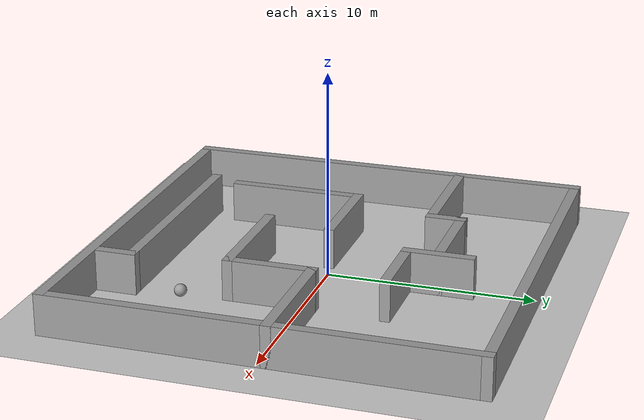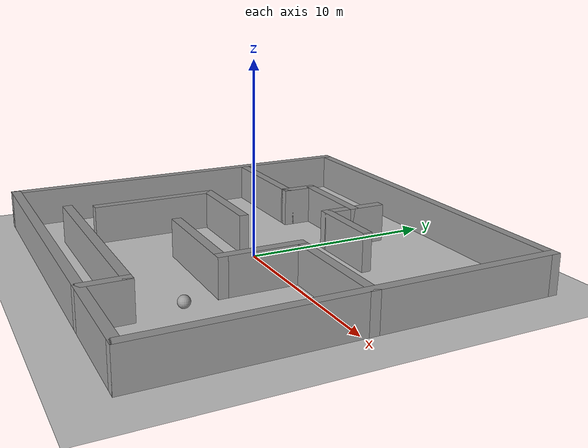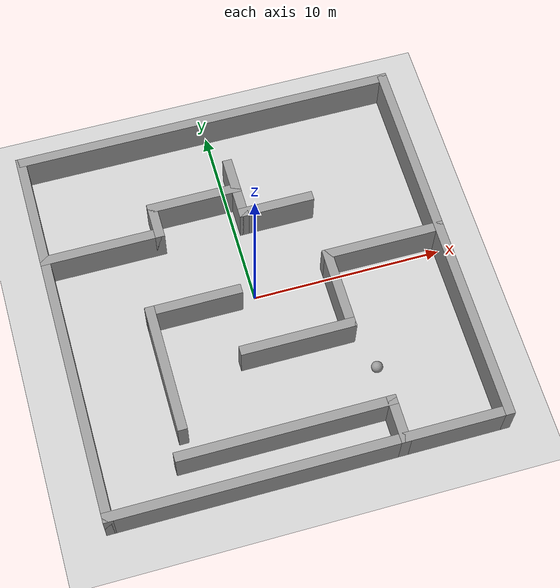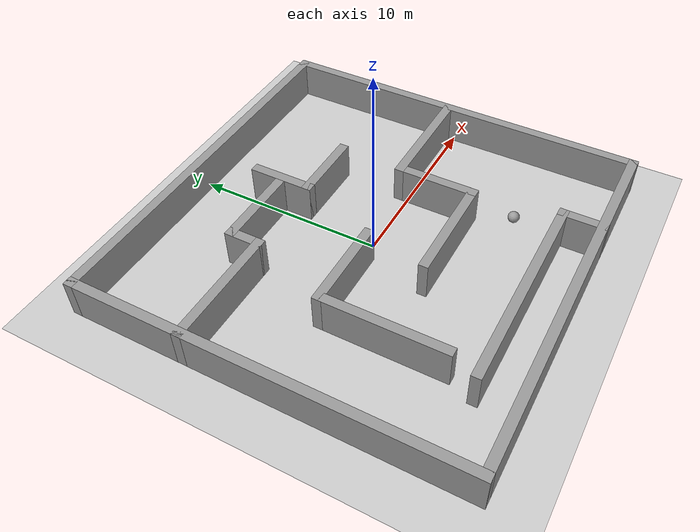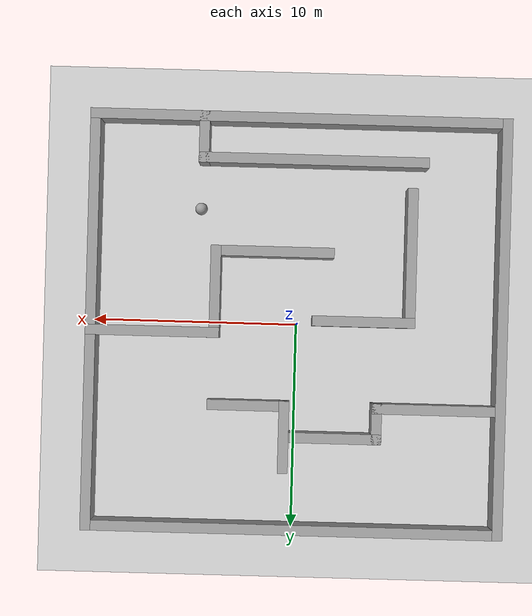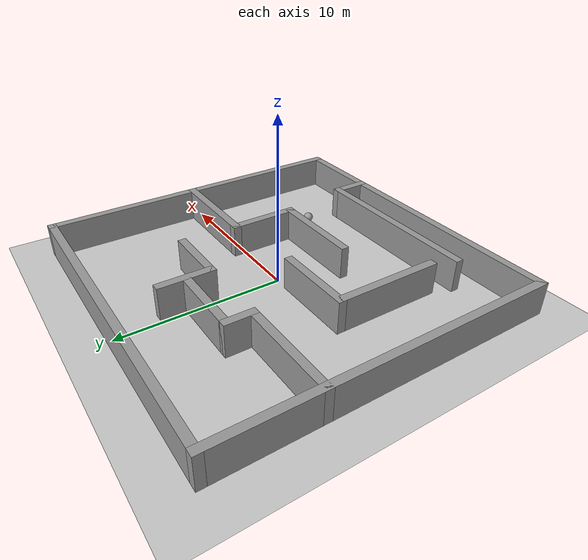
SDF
<sdf version="1.6">
 <world name="default">
  <light name="sun" type="directional">
   <pose>0 0 10 0 -0 0</pose>
   <diffuse>0.8 0.8 0.8 1</diffuse>
   <specular>0.1 0.1 0.1 1</specular>
   <attenuation>
    <range>1000</range>
    <constant>0.9</constant>
    <linear>0.01</linear>
    <quadratic>0.001</quadratic>
   </attenuation>
   <direction>-0.5 0.5 -1</direction>
  </light>
  <model name="ground_plane">
   <static>1</static>
   <link name="link">
    <collision name="collision">
     <geometry><plane><normal>0 0 1</normal><size>100 100</size></plane></geometry>
     <surface><friction><ode><mu>100</mu><mu2>50</mu2></ode></friction></surface>
    </collision>
    <visual name="visual">
     <cast_shadows>0</cast_shadows>
     <geometry><plane><normal>0 0 1</normal><size>100 100</size></plane></geometry>
     <material>
      <script><uri>file://media/materials/scripts/gazebo.material</uri><name>Gazebo/Grey</name></script>
     </material>
    </visual>
   </link>
  </model>
  <gravity>0 0 -9.8</gravity>
  <magnetic_field>6e-06 2.3e-05 -4.2e-05</magnetic_field>
  <atmosphere type="adiabatic"/>
  <physics name="default_physics" default="0" type="ode">
   <max_step_size>0.001</max_step_size>
   <real_time_factor>1</real_time_factor>
   <real_time_update_rate>1000</real_time_update_rate>
  </physics>
  <scene><ambient>0.4 0.4 0.4 1</ambient><background>0.7 0.7 0.7 1</background><shadows>1</shadows></scene>
  <spherical_coordinates>
   <surface_model>EARTH_WGS84</surface_model>
   <latitude_deg>0</latitude_deg>
   <longitude_deg>0</longitude_deg>
   <elevation>0</elevation>
   <heading_deg>0</heading_deg>
  </spherical_coordinates>
  <model name="test_maze1">
   <pose>0 -3.9e-05 0 0 -0 0</pose>
   <link name="Wall_0">
    <collision name="Wall_0_Collision">
     <geometry><box><size>20.5 0.5 2</size></box></geometry>
     <pose>0 0 1 0 -0 0</pose>
    </collision>
    <visual name="Wall_0_Visual">
     <pose>0 0 1 0 -0 0</pose>
     <geometry><box><size>20.5 0.5 2</size></box></geometry>
     <material>
      <script><uri>file://media/materials/scripts/gazebo.material</uri><name>Gazebo/Grey</name></script>
      <ambient>1 1 1 1</ambient>
     </material>
    </visual>
    <pose>-10 3.9e-05 0 0 0 -1.5708</pose>
   </link>
   <link name="Wall_1">
    <collision name="Wall_1_Collision">
     <geometry><box><size>20.5 0.5 2</size></box></geometry>
     <pose>0 0 1 0 -0 0</pose>
    </collision>
    <visual name="Wall_1_Visual">
     <pose>0 0 1 0 -0 0</pose>
     <geometry><box><size>20.5 0.5 2</size></box></geometry>
     <material>
      <script><uri>file://media/materials/scripts/gazebo.material</uri><name>Gazebo/Grey</name></script>
      <ambient>1 1 1 1</ambient>
     </material>
    </visual>
    <pose>0 -9.99996 0 0 -0 0</pose>
   </link>
   <link name="Wall_10">
    <collision name="Wall_10_Collision">
     <geometry><box><size>3.5 0.5 2</size></box></geometry>
     <pose>0 0 1 0 -0 0</pose>
    </collision>
    <visual name="Wall_10_Visual">
     <pose>0 0 1 0 -0 0</pose>
     <geometry><box><size>3.5 0.5 2</size></box></geometry>
     <material>
      <script><uri>file://media/materials/scripts/gazebo.material</uri><name>Gazebo/Grey</name></script>
      <ambient>1 1 1 1</ambient>
     </material>
    </visual>
    <pose>0.5 5.50004 0 0 0 -1.5708</pose>
   </link>
   <link name="Wall_11">
    <collision name="Wall_11_Collision">
     <geometry><box><size>4 0.5 2</size></box></geometry>
     <pose>0 0 1 0 -0 0</pose>
    </collision>
    <visual name="Wall_11_Visual">
     <pose>0 0 1 0 -0 0</pose>
     <geometry><box><size>4 0.5 2</size></box></geometry>
     <material>
      <script><uri>file://media/materials/scripts/gazebo.material</uri><name>Gazebo/Grey</name></script>
      <ambient>1 1 1 1</ambient>
     </material>
    </visual>
    <pose>2.25 4.00004 0 0 -0 0</pose>
   </link>
   <link name="Wall_13">
    <collision name="Wall_13_Collision">
     <geometry><box><size>5 0.5 2</size></box></geometry>
     <pose>0 0 1 0 -0 0</pose>
    </collision>
    <visual name="Wall_13_Visual">
     <pose>0 0 1 0 -0 0</pose>
     <geometry><box><size>5 0.5 2</size></box></geometry>
     <material>
      <script><uri>file://media/materials/scripts/gazebo.material</uri><name>Gazebo/Grey</name></script>
      <ambient>1 1 1 1</ambient>
     </material>
    </visual>
    <pose>-3.25 -0.199961 0 0 -0 3.14159</pose>
   </link>
   <link name="Wall_14">
    <collision name="Wall_14_Collision">
     <geometry><box><size>6.8 0.5 2</size></box></geometry>
     <pose>0 0 1 0 -0 0</pose>
    </collision>
    <visual name="Wall_14_Visual">
     <pose>0 0 1 0 -0 0</pose>
     <geometry><box><size>6.8 0.5 2</size></box></geometry>
     <material>
      <script><uri>file://media/materials/scripts/gazebo.material</uri><name>Gazebo/Grey</name></script>
      <ambient>1 1 1 1</ambient>
     </material>
    </visual>
    <pose>-5.5 -3.34996 0 0 0 -1.5708</pose>
   </link>
   <link name="Wall_16">
    <collision name="Wall_16_Collision">
     <geometry><box><size>11.2 0.5 2</size></box></geometry>
     <pose>0 0 1 0 -0 0</pose>
    </collision>
    <visual name="Wall_16_Visual">
     <pose>0 0 1 0 -0 0</pose>
     <geometry><box><size>11.2 0.5 2</size></box></geometry>
     <material>
      <script><uri>file://media/materials/scripts/gazebo.material</uri><name>Gazebo/Grey</name></script>
      <ambient>1 1 1 1</ambient>
     </material>
    </visual>
    <pose>-0.65 -7.99996 0 0 -0 0</pose>
   </link>
   <link name="Wall_17">
    <collision name="Wall_17_Collision">
     <geometry><box><size>2.50016 0.5 2</size></box></geometry>
     <pose>0 0 1 0 -0 0</pose>
    </collision>
    <visual name="Wall_17_Visual">
     <pose>0 0 1 0 -0 0</pose>
     <geometry><box><size>2.50016 0.5 2</size></box></geometry>
     <material>
      <script><uri>file://media/materials/scripts/gazebo.material</uri><name>Gazebo/Grey</name></script>
      <ambient>1 1 1 1</ambient>
     </material>
    </visual>
    <pose>4.7 -8.99996 0 0 0 -1.5708</pose>
   </link>
   <link name="Wall_19">
    <collision name="Wall_19_Collision">
     <geometry><box><size>6.5 0.5 2</size></box></geometry>
     <pose>0 0 1 0 -0 0</pose>
    </collision>
    <visual name="Wall_19_Visual">
     <pose>0 0 1 0 -0 0</pose>
     <geometry><box><size>6.5 0.5 2</size></box></geometry>
     <material>
      <script><uri>file://media/materials/scripts/gazebo.material</uri><name>Gazebo/Grey</name></script>
      <ambient>1 1 1 1</ambient>
     </material>
    </visual>
    <pose>7 0.500039 0 0 -0 0</pose>
   </link>
   <link name="Wall_2">
    <collision name="Wall_2_Collision">
     <geometry><box><size>20.5 0.5 2</size></box></geometry>
     <pose>0 0 1 0 -0 0</pose>
    </collision>
    <visual name="Wall_2_Visual">
     <pose>0 0 1 0 -0 0</pose>
     <geometry><box><size>20.5 0.5 2</size></box></geometry>
     <material>
      <script><uri>file://media/materials/scripts/gazebo.material</uri><name>Gazebo/Grey</name></script>
      <ambient>1 1 1 1</ambient>
     </material>
    </visual>
    <pose>10 3.9e-05 0 0 -0 1.5708</pose>
   </link>
   <link name="Wall_21">
    <collision name="Wall_21_Collision">
     <geometry><box><size>4.5 0.5 2</size></box></geometry>
     <pose>0 0 1 0 -0 0</pose>
    </collision>
    <visual name="Wall_21_Visual">
     <pose>0 0 1 0 -0 0</pose>
     <geometry><box><size>4.5 0.5 2</size></box></geometry>
     <material>
      <script><uri>file://media/materials/scripts/gazebo.material</uri><name>Gazebo/Grey</name></script>
      <ambient>1 1 1 1</ambient>
     </material>
    </visual>
    <pose>4 -1.49996 0 0 0 -1.5708</pose>
   </link>
   <link name="Wall_22">
    <collision name="Wall_22_Collision">
     <geometry><box><size>6 0.5 2</size></box></geometry>
     <pose>0 0 1 0 -0 0</pose>
    </collision>
    <visual name="Wall_22_Visual">
     <pose>0 0 1 0 -0 0</pose>
     <geometry><box><size>6 0.5 2</size></box></geometry>
     <material>
      <script><uri>file://media/materials/scripts/gazebo.material</uri><name>Gazebo/Grey</name></script>
      <ambient>1 1 1 1</ambient>
     </material>
    </visual>
    <pose>1.25 -3.49996 0 0 -0 3.14159</pose>
   </link>
   <link name="Wall_3">
    <collision name="Wall_3_Collision">
     <geometry><box><size>20.5 0.5 2</size></box></geometry>
     <pose>0 0 1 0 -0 0</pose>
    </collision>
    <visual name="Wall_3_Visual">
     <pose>0 0 1 0 -0 0</pose>
     <geometry><box><size>20.5 0.5 2</size></box></geometry>
     <material>
      <script><uri>file://media/materials/scripts/gazebo.material</uri><name>Gazebo/Grey</name></script>
      <ambient>1 1 1 1</ambient>
     </material>
    </visual>
    <pose>0 10 0 0 -0 3.14159</pose>
   </link>
   <link name="Wall_5">
    <collision name="Wall_5_Collision">
     <geometry><box><size>6.5 0.5 2</size></box></geometry>
     <pose>0 0 1 0 -0 0</pose>
    </collision>
    <visual name="Wall_5_Visual">
     <pose>0 0 1 0 -0 0</pose>
     <geometry><box><size>6.5 0.5 2</size></box></geometry>
     <material>
      <script><uri>file://media/materials/scripts/gazebo.material</uri><name>Gazebo/Grey</name></script>
      <ambient>1 1 1 1</ambient>
     </material>
    </visual>
    <pose>-7 4.00004 0 0 -0 0</pose>
   </link>
   <link name="Wall_6">
    <collision name="Wall_6_Collision">
     <geometry><box><size>2 0.5 2</size></box></geometry>
     <pose>0 0 1 0 -0 0</pose>
    </collision>
    <visual name="Wall_6_Visual">
     <pose>0 0 1 0 -0 0</pose>
     <geometry><box><size>2 0.5 2</size></box></geometry>
     <material>
      <script><uri>file://media/materials/scripts/gazebo.material</uri><name>Gazebo/Grey</name></script>
      <ambient>1 1 1 1</ambient>
     </material>
    </visual>
    <pose>-4 4.75004 0 0 -0 1.5708</pose>
   </link>
   <link name="Wall_7">
    <collision name="Wall_7_Collision">
     <geometry><box><size>5 0.5 2</size></box></geometry>
     <pose>0 0 1 0 -0 0</pose>
    </collision>
    <visual name="Wall_7_Visual">
     <pose>0 0 1 0 -0 0</pose>
     <geometry><box><size>5 0.5 2</size></box></geometry>
     <material>
      <script><uri>file://media/materials/scripts/gazebo.material</uri><name>Gazebo/Grey</name></script>
      <ambient>1 1 1 1</ambient>
     </material>
    </visual>
    <pose>-1.75 5.50004 0 0 -0 0</pose>
   </link>
   <static>1</static>
  </model>
  <model name="sfera">
   <link name="link">
    <inertial>
     <mass>1</mass>
     <inertia><ixx>0.1</ixx><ixy>0</ixy><ixz>0</ixz><iyy>0.1</iyy><iyz>0</iyz><izz>0.1</izz></inertia>
    </inertial>
    <visual name="visual">
     <geometry><sphere><radius>0.3</radius></sphere></geometry>
     <material>
      <script><name>Gazebo/Grey</name><uri>file://media/materials/scripts/gazebo.material</uri></script>
      <ambient>0.3 0.3 0.3 1</ambient>
      <diffuse>0.7 0.7 0.7 1</diffuse>
      <specular>0.01 0.01 0.01 1</specular>
      <emissive>0 0 0 1</emissive>
      <shader type="vertex"><normal_map>__default__</normal_map></shader>
     </material>
    </visual>
    <collision name="collision">
     <geometry><sphere><radius>0.3</radius></sphere></geometry>
     <surface>
      <friction>
       <ode><mu>1</mu><mu2>1</mu2><fdir1>0 0 0</fdir1><slip1>0</slip1><slip2>0</slip2></ode>
       <torsional>
        <coefficient>1</coefficient>
        <patch_radius>0</patch_radius>
        <surface_radius>0</surface_radius>
        <use_patch_radius>1</use_patch_radius>
        <ode><slip>0</slip></ode>
       </torsional>
      </friction>
      <bounce><restitution_coefficient>0</restitution_coefficient><threshold>1e+06</threshold></bounce>
      <contact>
       <collide_without_contact>0</collide_without_contact>
       <collide_without_contact_bitmask>1</collide_without_contact_bitmask>
       <collide_bitmask>1</collide_bitmask>
       <ode>
        <soft_cfm>0</soft_cfm>
        <soft_erp>0.2</soft_erp>
        <kp>1e+13</kp>
        <kd>1</kd>
        <max_vel>0.01</max_vel>
        <min_depth>0</min_depth>
       </ode>
       <bullet>
        <split_impulse>1</split_impulse>
        <split_impulse_penetration_threshold>-0.01</split_impulse_penetration_threshold>
        <soft_cfm>0</soft_cfm>
        <soft_erp>0.2</soft_erp>
        <kp>1e+13</kp>
        <kd>1</kd>
       </bullet>
      </contact>
     </surface>
    </collision>
   </link>
   <static>0</static>
   <pose>4.82085 -5.57527 0.5 0 -0 0</pose>
  </model>
 </world>
</sdf>
